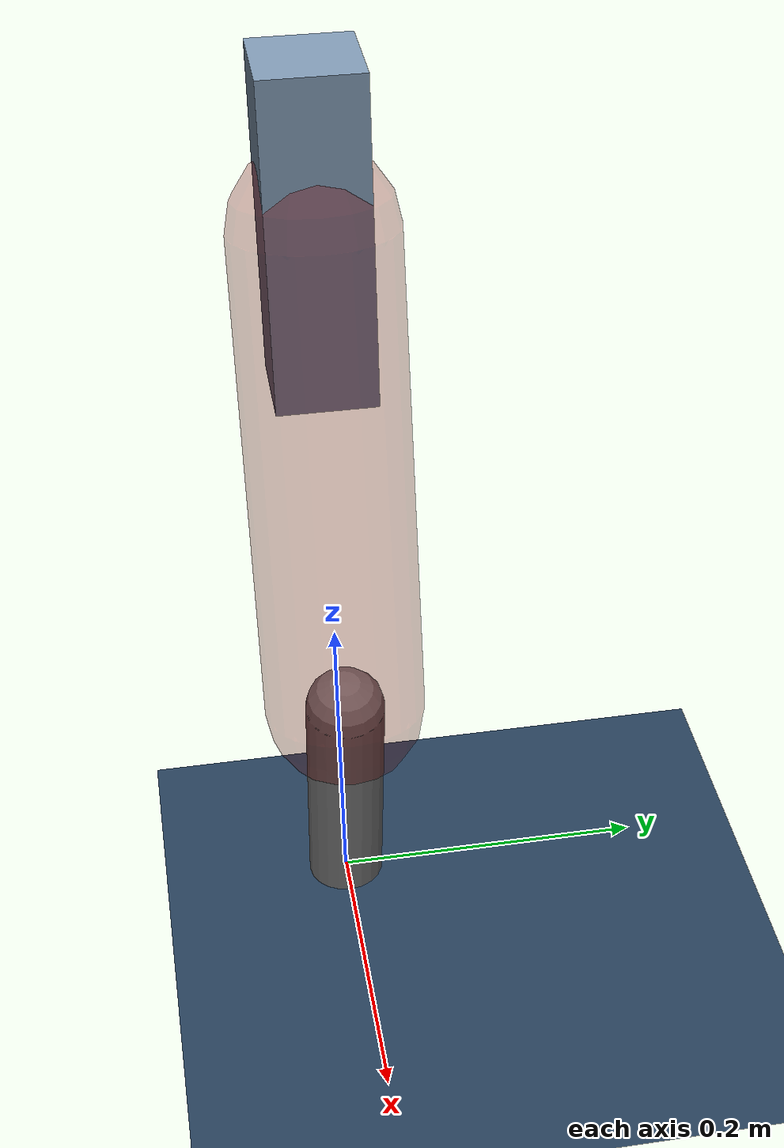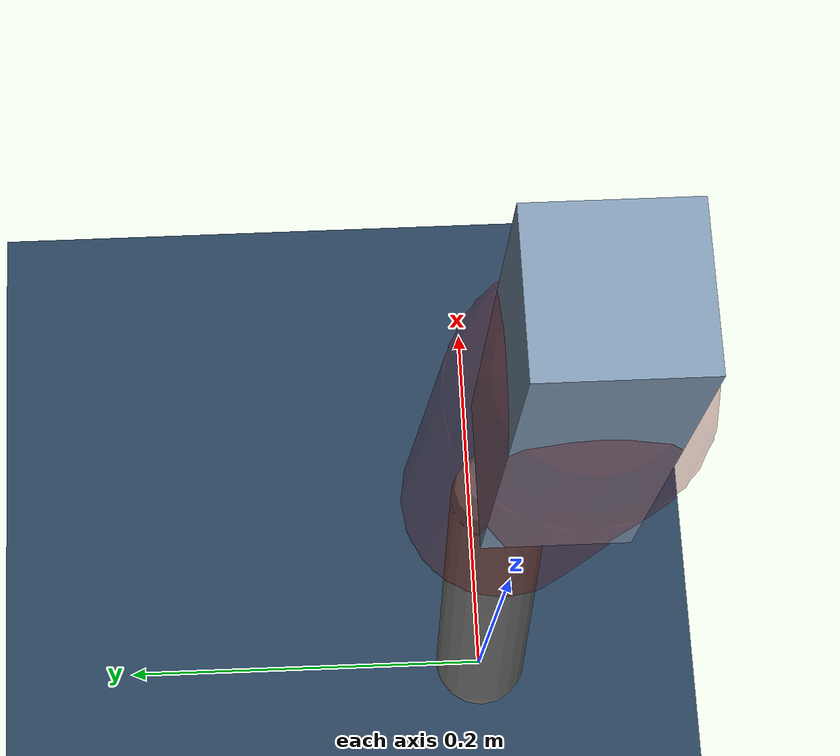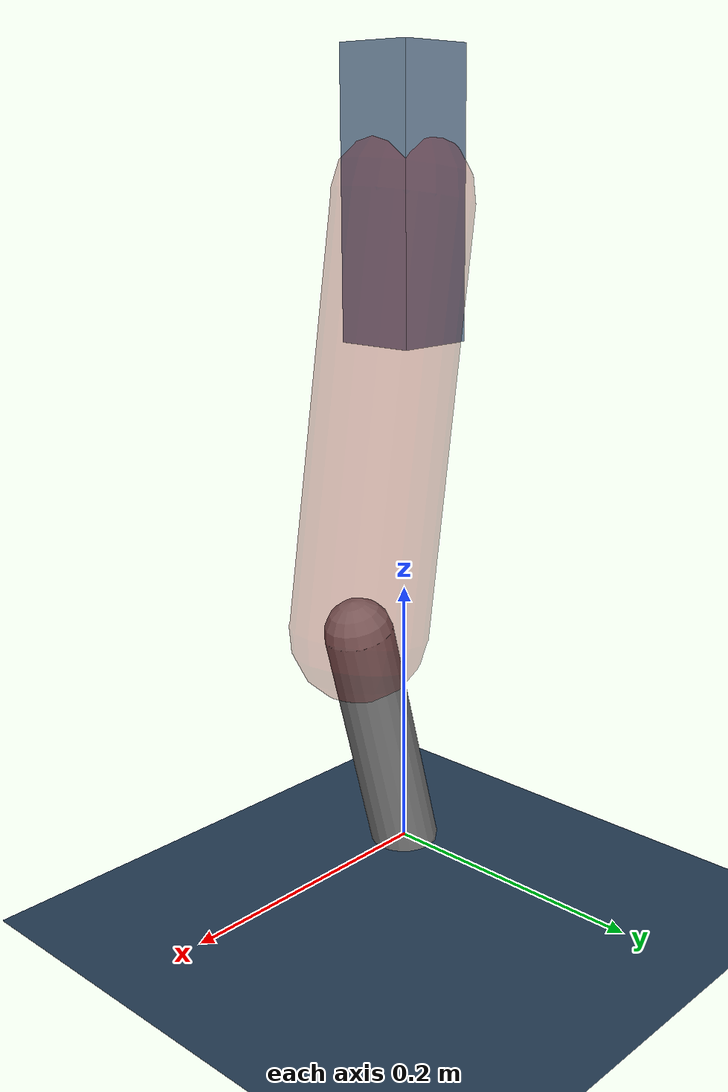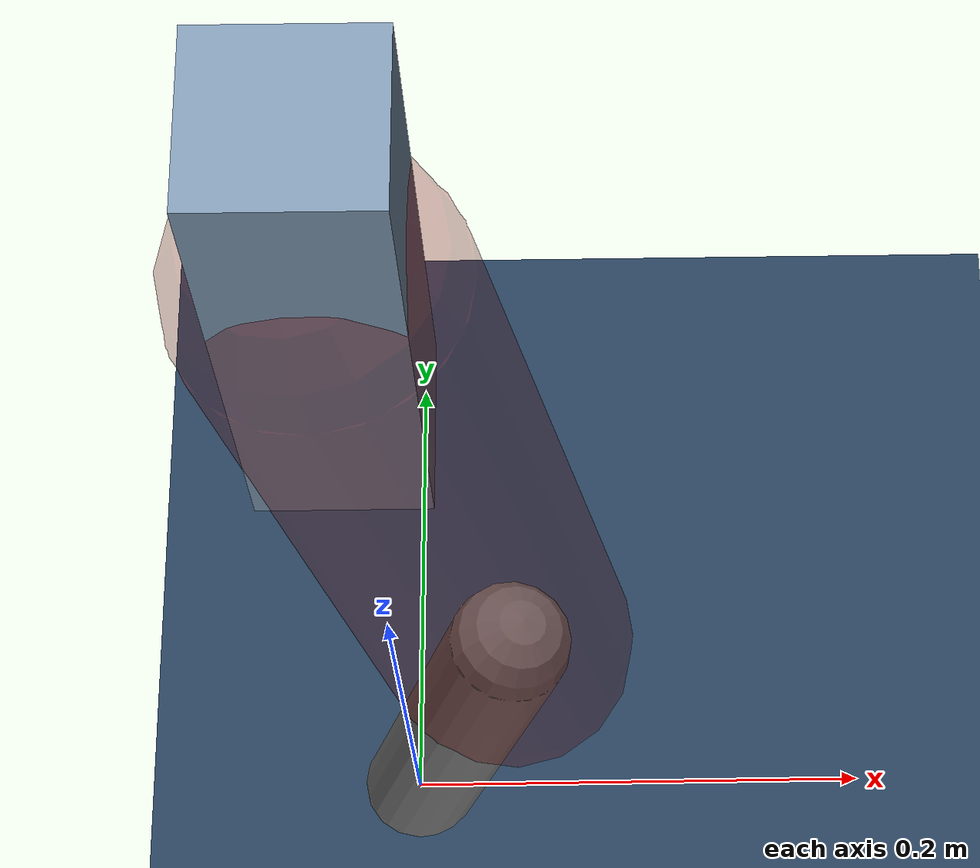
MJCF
<mujoco model="Hopper2D">
	<compiler inertiafromgeom="true" angle="radian" />
	<option timestep="0.001" integrator="implicit" cone="elliptic" solver="Newton" tolerance="1e-10" />

	<default>
		<geom contype="1" conaffinity="1" condim="3" friction="2 0.005 0.0001" solref="0.005 1" />
		<joint limited="true" damping="0.1" />
	</default>

	<asset>
		<texture name="skybox" type="skybox" builtin="gradient" rgb1=".4 .6 .8" rgb2="0 0 0" width="800" height="800" />
		<texture name="grid" type="2d" builtin="checker" rgb1=".1 .2 .3" rgb2=".2 .3 .4" width="300" height="300" mark="edge" markrgb=".2 .3 .4" />
		<material name="ground" texture="grid" texrepeat="1 1" texuniform="true" reflectance="0.1" />
		<material name="leg" rgba="0.5 0.6 0.7 1" />
	</asset>

	<worldbody>

		<geom name="floor" type="plane" size="5 5 0.25" material="ground" />

		<light directional="false" diffuse="0.8 0.8 0.8" specular="0.3 0.3 0.3" pos="0 0 2" dir="0 0 -1" />
		<light mode="targetbodycom" target="base" directional="false" diffuse="0.8 0.8 0.8" specular="0.3 0.3 0.3" pos="0 0 2" dir="0 0 -1" />

		<camera name="fixed" pos="0 -2 1" xyaxes="1 0 0 0 0 1" />
		<camera name="tracking" mode="trackcom" pos="0 -3 1" />

		<body name="root" pos="0 0 0.4814158953225687">
			<joint name="slide_x" type="slide" axis="1 0 0" range="-100 100" />
			<joint name="slide_z" type="slide" axis="0 0 1" range="0 10" />

			<body name="base" pos="0 0 0">
				<geom name="torso" type="box" size="0.03 0.03 0.1" mass="2.332" material="leg" />

				<body name="link1" pos="0 0 0" euler="0 1.4147819731177624 0">
					<joint type="hinge" axis="0 -1 0" pos="0 0 0" name="hinge1" limited="true" range="-3.14 3.14" stiffness="0" damping="0.1" />
					<geom name="thigh" type="capsule" fromto="0 0 0 0.30694369967192536 0 0" size="0.05" rgba="0.5 0 0 0.3" mass="1.0075479891141985" />

					<body name="link2" pos="0.30694369967192536 0 0" euler="0 0.41752570455853383 0">
						<joint type="hinge" axis="0 -1 0" pos="0 0 0" name="hinge2" limited="true" range="-3.14 3.14" stiffness="0" damping="0.1" />
						<geom name="shank" type="capsule" fromto="0 0 0 0.18447219565064332 0 0" size="0.025" mass="0.387724976085579" />

					</body>
				</body>
			</body>
		</body>
	</worldbody>

	<actuator>
		<motor name="torque1" joint="hinge1" ctrlrange="-72.51381607600169 72.51381607600169" ctrllimited="true" gear="1" />
		<motor name="torque2" joint="hinge2" ctrlrange="-83.66715850455984 83.66715850455984" ctrllimited="true" gear="1" />
	</actuator>
</mujoco>
